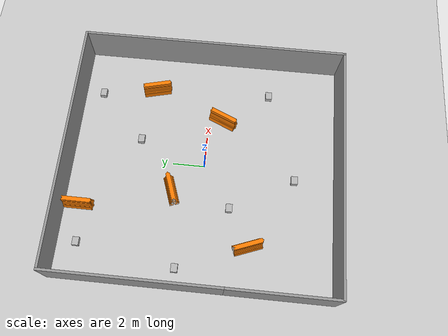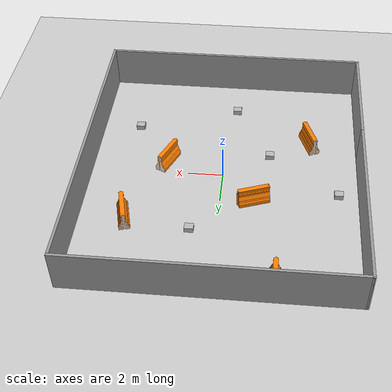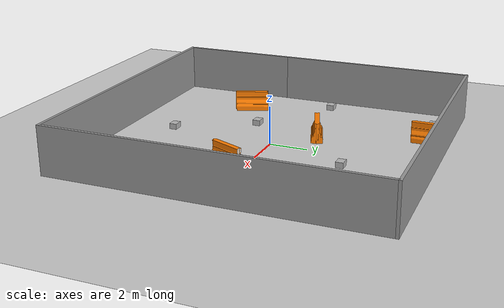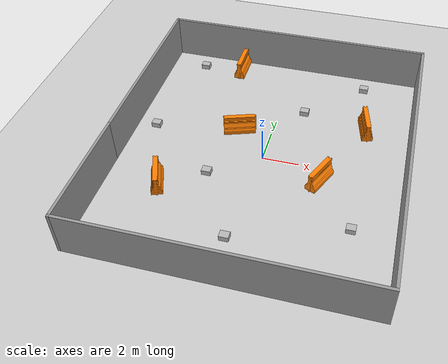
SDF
<sdf version="1.7">
 <world name="default">
  <light name="sun" type="directional">
   <pose>0 0 10 0 -0 0</pose>
   <diffuse>0.8 0.8 0.8 1</diffuse>
   <specular>0.2 0.2 0.2 1</specular>
   <attenuation>
    <range>1000</range>
    <constant>0.9</constant>
    <linear>0.01</linear>
    <quadratic>0.001</quadratic>
   </attenuation>
   <direction>-0.5 0.1 -0.9</direction>
   <spot><inner_angle>0</inner_angle><outer_angle>0</outer_angle><falloff>0</falloff></spot>
  </light>
  <model name="ground_plane">
   <static>1</static>
   <link name="link">
    <collision name="collision">
     <geometry><plane><normal>0 0 1</normal><size>100 100</size></plane></geometry>
     <surface><friction><ode><mu>100</mu><mu2>50</mu2></ode></friction></surface>
    </collision>
    <visual name="visual">
     <cast_shadows>0</cast_shadows>
     <geometry><plane><normal>0 0 1</normal><size>100 100</size></plane></geometry>
     <material>
      <script><uri>file://media/materials/scripts/gazebo.material</uri><name>Gazebo/Grey</name></script>
     </material>
    </visual>
   </link>
  </model>
  <gravity>0 0 -9.8</gravity>
  <magnetic_field>6e-06 2.3e-05 -4.2e-05</magnetic_field>
  <atmosphere type="adiabatic"/>
  <physics type="ode">
   <max_step_size>0.001</max_step_size>
   <real_time_factor>1</real_time_factor>
   <real_time_update_rate>1000</real_time_update_rate>
  </physics>
  <scene><ambient>0.4 0.4 0.4 1</ambient><background>0.7 0.7 0.7 1</background><shadows>1</shadows></scene>
  <spherical_coordinates>
   <surface_model>EARTH_WGS84</surface_model>
   <latitude_deg>0</latitude_deg>
   <longitude_deg>0</longitude_deg>
   <elevation>0</elevation>
   <heading_deg>0</heading_deg>
  </spherical_coordinates>
  <model name="wall">
   <pose>-0.04119 0.112997 0 0 -0 0</pose>
   <link name="Wall_0">
    <collision name="Wall_0_Collision">
     <geometry><box><size>6.5 0.15 2.5</size></box></geometry>
     <pose>0 0 1.25 0 -0 0</pose>
    </collision>
    <visual name="Wall_0_Visual">
     <pose>0 0 1.25 0 -0 0</pose>
     <geometry><box><size>6.5 0.15 2.5</size></box></geometry>
     <material>
      <script><uri>file://media/materials/scripts/gazebo.material</uri><name>Gazebo/Grey</name></script>
      <ambient>1 1 1 1</ambient>
     </material>
     <meta><layer>0</layer></meta>
    </visual>
    <pose>-7.675 -5.175 0 0 -0 -1.5708</pose>
   </link>
   <link name="Wall_1">
    <collision name="Wall_1_Collision">
     <geometry><box><size>15.5 0.15 2.5</size></box></geometry>
     <pose>0 0 1.25 0 -0 0</pose>
    </collision>
    <visual name="Wall_1_Visual">
     <pose>0 0 1.25 0 -0 0</pose>
     <geometry><box><size>15.5 0.15 2.5</size></box></geometry>
     <material>
      <script><uri>file://media/materials/scripts/gazebo.material</uri><name>Gazebo/Grey</name></script>
      <ambient>1 1 1 1</ambient>
     </material>
     <meta><layer>0</layer></meta>
    </visual>
    <pose>-0 -8.35 0 0 -0 0</pose>
   </link>
   <link name="Wall_2">
    <collision name="Wall_2_Collision">
     <geometry><box><size>16.75 0.15 2.5</size></box></geometry>
     <pose>0 0 1.25 0 -0 0</pose>
    </collision>
    <visual name="Wall_2_Visual">
     <pose>0 0 1.25 0 -0 0</pose>
     <geometry><box><size>16.75 0.15 2.5</size></box></geometry>
     <material>
      <script><uri>file://media/materials/scripts/gazebo.material</uri><name>Gazebo/Grey</name></script>
      <ambient>1 1 1 1</ambient>
     </material>
     <meta><layer>0</layer></meta>
    </visual>
    <pose>7.675 -0.05 0 0 -0 1.5708</pose>
   </link>
   <link name="Wall_5">
    <collision name="Wall_5_Collision">
     <geometry><box><size>10.5 0.15 2.5</size></box></geometry>
     <pose>0 0 1.25 0 -0 0</pose>
    </collision>
    <visual name="Wall_5_Visual">
     <pose>0 0 1.25 0 -0 0</pose>
     <geometry><box><size>10.5 0.15 2.5</size></box></geometry>
     <material>
      <script><uri>file://media/materials/scripts/gazebo.material</uri><name>Gazebo/Grey</name></script>
      <ambient>1 1 1 1</ambient>
     </material>
     <meta><layer>0</layer></meta>
    </visual>
    <pose>-7.675 3.175 0 0 -0 1.5708</pose>
   </link>
   <link name="Wall_6">
    <collision name="Wall_6_Collision">
     <geometry><box><size>15.5 0.15 2.5</size></box></geometry>
     <pose>0 0 1.25 0 -0 0</pose>
    </collision>
    <visual name="Wall_6_Visual">
     <pose>0 0 1.25 0 -0 0</pose>
     <geometry><box><size>15.5 0.15 2.5</size></box></geometry>
     <material>
      <script><uri>file://media/materials/scripts/gazebo.material</uri><name>Gazebo/Grey</name></script>
      <ambient>1 1 1 1</ambient>
     </material>
     <meta><layer>0</layer></meta>
    </visual>
    <pose>-0 8.35 0 0 -0 0</pose>
   </link>
   <static>1</static>
  </model>
  <model name="cardboard_box">
   <pose>-5.55602 7.20624 0.149 0 -0 0</pose>
   <link name="link">
    <inertial>
     <mass>2</mass>
     <inertia>
      <ixx>0.0416667</ixx>
      <ixy>0</ixy>
      <ixz>0</ixz>
      <iyy>0.0566667</iyy>
      <iyz>0</iyz>
      <izz>0.0683333</izz>
     </inertia>
    </inertial>
    <collision name="collision">
     <geometry><box><size>0.5 0.4 0.3</size></box></geometry>
     <surface>
      <friction><ode><mu>1</mu><mu2>1</mu2></ode></friction>
      <contact><ode><kp>1e+07</kp><kd>1</kd><min_depth>0.001</min_depth><max_vel>0.1</max_vel></ode></contact>
     </surface>
    </collision>
    <visual name="visual">
     <pose>0 0 -0.15 0 -0 0</pose>
     <geometry>
      <mesh><uri>model://cardboard_box/meshes/cardboard_box.dae</uri><scale>1.25932 1.00745 0.755591</scale></mesh>
     </geometry>
    </visual>
   </link>
  </model>
  <model name="cardboard_box_0">
   <pose>-2.60772 -1.75388 0.149 0 -0 0</pose>
   <link name="link">
    <inertial>
     <mass>2</mass>
     <inertia>
      <ixx>0.0416667</ixx>
      <ixy>0</ixy>
      <ixz>0</ixz>
      <iyy>0.0566667</iyy>
      <iyz>0</iyz>
      <izz>0.0683333</izz>
     </inertia>
    </inertial>
    <collision name="collision">
     <geometry><box><size>0.5 0.4 0.3</size></box></geometry>
     <surface>
      <friction><ode><mu>1</mu><mu2>1</mu2></ode></friction>
      <contact><ode><kp>1e+07</kp><kd>1</kd><min_depth>0.001</min_depth><max_vel>0.1</max_vel></ode></contact>
     </surface>
    </collision>
    <visual name="visual">
     <pose>0 0 -0.15 0 -0 0</pose>
     <geometry>
      <mesh><uri>model://cardboard_box/meshes/cardboard_box.dae</uri><scale>1.25932 1.00745 0.755591</scale></mesh>
     </geometry>
    </visual>
   </link>
  </model>
  <model name="cardboard_box_1">
   <pose>1.46467 4.22336 0.149 0 -0 0</pose>
   <link name="link">
    <inertial>
     <mass>2</mass>
     <inertia>
      <ixx>0.0416667</ixx>
      <ixy>0</ixy>
      <ixz>0</ixz>
      <iyy>0.0566667</iyy>
      <iyz>0</iyz>
      <izz>0.0683333</izz>
     </inertia>
    </inertial>
    <collision name="collision">
     <geometry><box><size>0.5 0.4 0.3</size></box></geometry>
     <surface>
      <friction><ode><mu>1</mu><mu2>1</mu2></ode></friction>
      <contact><ode><kp>1e+07</kp><kd>1</kd><min_depth>0.001</min_depth><max_vel>0.1</max_vel></ode></contact>
     </surface>
    </collision>
    <visual name="visual">
     <pose>0 0 -0.15 0 -0 0</pose>
     <geometry>
      <mesh><uri>model://cardboard_box/meshes/cardboard_box.dae</uri><scale>1.25932 1.00745 0.755591</scale></mesh>
     </geometry>
    </visual>
   </link>
  </model>
  <model name="cardboard_box_2">
   <pose>-6.5514 1.1572 0.149 0 -0 0</pose>
   <link name="link">
    <inertial>
     <mass>2</mass>
     <inertia>
      <ixx>0.0416667</ixx>
      <ixy>0</ixy>
      <ixz>0</ixz>
      <iyy>0.0566667</iyy>
      <iyz>0</iyz>
      <izz>0.0683333</izz>
     </inertia>
    </inertial>
    <collision name="collision">
     <geometry><box><size>0.5 0.4 0.3</size></box></geometry>
     <surface>
      <friction><ode><mu>1</mu><mu2>1</mu2></ode></friction>
      <contact><ode><kp>1e+07</kp><kd>1</kd><min_depth>0.001</min_depth><max_vel>0.1</max_vel></ode></contact>
     </surface>
    </collision>
    <visual name="visual">
     <pose>0 0 -0.15 0 -0 0</pose>
     <geometry>
      <mesh><uri>model://cardboard_box/meshes/cardboard_box.dae</uri><scale>1.25932 1.00745 0.755591</scale></mesh>
     </geometry>
    </visual>
   </link>
  </model>
  <model name="cardboard_box_3">
   <pose>5.36087 -3.75455 0.149 0 -0 0</pose>
   <link name="link">
    <inertial>
     <mass>2</mass>
     <inertia>
      <ixx>0.0416667</ixx>
      <ixy>0</ixy>
      <ixz>0</ixz>
      <iyy>0.0566667</iyy>
      <iyz>0</iyz>
      <izz>0.0683333</izz>
     </inertia>
    </inertial>
    <collision name="collision">
     <geometry><box><size>0.5 0.4 0.3</size></box></geometry>
     <surface>
      <friction><ode><mu>1</mu><mu2>1</mu2></ode></friction>
      <contact><ode><kp>1e+07</kp><kd>1</kd><min_depth>0.001</min_depth><max_vel>0.1</max_vel></ode></contact>
     </surface>
    </collision>
    <visual name="visual">
     <pose>0 0 -0.15 0 -0 0</pose>
     <geometry>
      <mesh><uri>model://cardboard_box/meshes/cardboard_box.dae</uri><scale>1.25932 1.00745 0.755591</scale></mesh>
     </geometry>
    </visual>
   </link>
  </model>
  <model name="cardboard_box_4">
   <pose>-0.433195 -5.67366 0.149 0 -0 0</pose>
   <link name="link">
    <inertial>
     <mass>2</mass>
     <inertia>
      <ixx>0.0416667</ixx>
      <ixy>0</ixy>
      <ixz>0</ixz>
      <iyy>0.0566667</iyy>
      <iyz>0</iyz>
      <izz>0.0683333</izz>
     </inertia>
    </inertial>
    <collision name="collision">
     <geometry><box><size>0.5 0.4 0.3</size></box></geometry>
     <surface>
      <friction><ode><mu>1</mu><mu2>1</mu2></ode></friction>
      <contact><ode><kp>1e+07</kp><kd>1</kd><min_depth>0.001</min_depth><max_vel>0.1</max_vel></ode></contact>
     </surface>
    </collision>
    <visual name="visual">
     <pose>0 0 -0.15 0 -0 0</pose>
     <geometry>
      <mesh><uri>model://cardboard_box/meshes/cardboard_box.dae</uri><scale>1.25932 1.00745 0.755591</scale></mesh>
     </geometry>
    </visual>
   </link>
  </model>
  <model name="cardboard_box_5">
   <pose>4.546 7.20357 0.149 0 -0 0</pose>
   <link name="link">
    <inertial>
     <mass>2</mass>
     <inertia>
      <ixx>0.0416667</ixx>
      <ixy>0</ixy>
      <ixz>0</ixz>
      <iyy>0.0566667</iyy>
      <iyz>0</iyz>
      <izz>0.0683333</izz>
     </inertia>
    </inertial>
    <collision name="collision">
     <geometry><box><size>0.5 0.4 0.3</size></box></geometry>
     <surface>
      <friction><ode><mu>1</mu><mu2>1</mu2></ode></friction>
      <contact><ode><kp>1e+07</kp><kd>1</kd><min_depth>0.001</min_depth><max_vel>0.1</max_vel></ode></contact>
     </surface>
    </collision>
    <visual name="visual">
     <pose>0 0 -0.15 0 -0 0</pose>
     <geometry>
      <mesh><uri>model://cardboard_box/meshes/cardboard_box.dae</uri><scale>1.25932 1.00745 0.755591</scale></mesh>
     </geometry>
    </visual>
   </link>
  </model>
  <model name="drc_practice_organge_jersey_barrier">
   <static>1</static>
   <link name="link">
    <visual name="visual">
     <geometry>
      <mesh><uri>model://drc_practice_orange_jersey_barrier/meshes/jersey_barrier.dae</uri></mesh>
     </geometry>
    </visual>
    <collision name="collision">
     <geometry>
      <mesh><uri>model://drc_practice_orange_jersey_barrier/meshes/jersey_barrier.dae</uri></mesh>
     </geometry>
    </collision>
   </link>
   <pose>-3.20075 7.4782 0 0 -0 0</pose>
  </model>
  <model name="drc_practice_organge_jersey_barrier_0">
   <static>1</static>
   <link name="link">
    <visual name="visual">
     <geometry>
      <mesh><uri>model://drc_practice_orange_jersey_barrier/meshes/jersey_barrier.dae</uri></mesh>
     </geometry>
    </visual>
    <collision name="collision">
     <geometry>
      <mesh><uri>model://drc_practice_orange_jersey_barrier/meshes/jersey_barrier.dae</uri></mesh>
     </geometry>
    </collision>
   </link>
   <pose>3.28122 -0.892204 0 0 0 -0.411479</pose>
  </model>
  <model name="drc_practice_organge_jersey_barrier_1">
   <static>1</static>
   <link name="link">
    <visual name="visual">
     <geometry>
      <mesh><uri>model://drc_practice_orange_jersey_barrier/meshes/jersey_barrier.dae</uri></mesh>
     </geometry>
    </visual>
    <collision name="collision">
     <geometry>
      <mesh><uri>model://drc_practice_orange_jersey_barrier/meshes/jersey_barrier.dae</uri></mesh>
     </geometry>
    </collision>
   </link>
   <pose>-4.89322 -3.03753 0 0 -0 0.36824</pose>
  </model>
  <model name="drc_practice_organge_jersey_barrier_2">
   <static>1</static>
   <link name="link">
    <visual name="visual">
     <geometry>
      <mesh><uri>model://drc_practice_orange_jersey_barrier/meshes/jersey_barrier.dae</uri></mesh>
     </geometry>
    </visual>
    <collision name="collision">
     <geometry>
      <mesh><uri>model://drc_practice_orange_jersey_barrier/meshes/jersey_barrier.dae</uri></mesh>
     </geometry>
    </collision>
   </link>
   <pose>5.09824 3.64589 0 0 -0 0.250213</pose>
  </model>
  <model name="drc_practice_organge_jersey_barrier_3">
   <static>1</static>
   <link name="link">
    <visual name="visual">
     <geometry>
      <mesh><uri>model://drc_practice_orange_jersey_barrier/meshes/jersey_barrier.dae</uri></mesh>
     </geometry>
    </visual>
    <collision name="collision">
     <geometry>
      <mesh><uri>model://drc_practice_orange_jersey_barrier/meshes/jersey_barrier.dae</uri></mesh>
     </geometry>
    </collision>
   </link>
   <pose>-1.83757 1.89007 0 0 -0 1.91064</pose>
  </model>
 </world>
</sdf>
